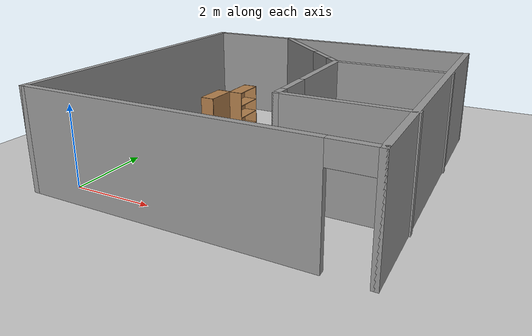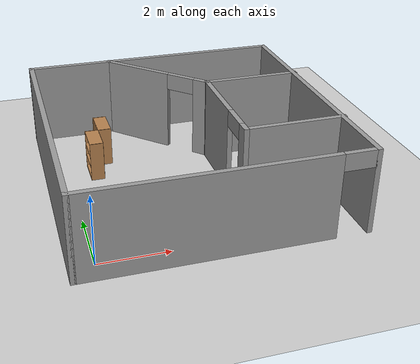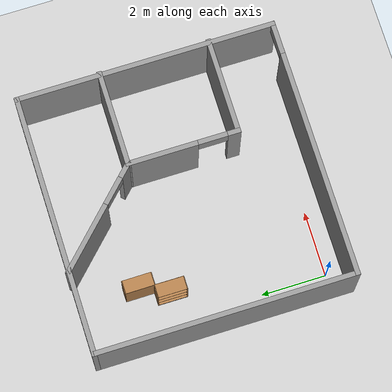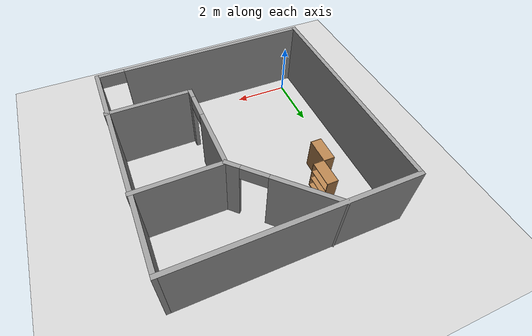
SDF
<sdf version="1.6">
 <world name="default">
  <model name="ground_plane">
   <static>1</static>
   <link name="link">
    <collision name="collision">
     <geometry><plane><normal>0 0 1</normal><size>100 100</size></plane></geometry>
     <surface><friction><ode><mu>100</mu><mu2>50</mu2></ode></friction></surface>
    </collision>
    <visual name="visual">
     <cast_shadows>0</cast_shadows>
     <geometry><plane><normal>0 0 1</normal><size>100 100</size></plane></geometry>
     <material>
      <script><uri>file://media/materials/scripts/gazebo.material</uri><name>Gazebo/Grey</name></script>
     </material>
    </visual>
   </link>
  </model>
  <model name="Untitled_0">
   <pose>3.31265 3.37544 0 0 -0 0</pose>
   <link name="Wall_10">
    <collision name="Wall_10_Collision">
     <geometry><box><size>8 0.15 2.5</size></box></geometry>
     <pose>0 0 1.25 0 -0 0</pose>
    </collision>
    <visual name="Wall_10_Visual">
     <pose>0 0 1.25 0 -0 0</pose>
     <geometry><box><size>8 0.15 2.5</size></box></geometry>
     <material>
      <script><uri>file://media/materials/scripts/gazebo.material</uri><name>Gazebo/Grey</name></script>
      <ambient>1 1 1 1</ambient>
     </material>
    </visual>
    <pose>-0.01726 3.90383 0 0 -0 3.14159</pose>
   </link>
   <link name="Wall_12">
    <collision name="Wall_12_Collision">
     <geometry><box><size>3 0.15 2.5</size></box></geometry>
     <pose>0 0 1.25 0 -0 0</pose>
    </collision>
    <visual name="Wall_12_Visual">
     <pose>0 0 1.25 0 -0 0</pose>
     <geometry><box><size>3 0.15 2.5</size></box></geometry>
     <material>
      <script><uri>file://media/materials/scripts/gazebo.material</uri><name>Gazebo/Grey</name></script>
      <ambient>1 1 1 1</ambient>
     </material>
    </visual>
    <pose>2.51726 1.36952 0 0 -0 3.14159</pose>
   </link>
   <link name="Wall_13">
    <pose>-0.180532 2.64231 0 0 -0 2.35619</pose>
    <visual name="Wall_13_Visual_0">
     <pose>-1.60522 0 1.25 0 -0 0</pose>
     <geometry><box><size>0.539569 0.15 2.5</size></box></geometry>
     <material>
      <script><uri>file://media/materials/scripts/gazebo.material</uri><name>Gazebo/Grey</name></script>
      <ambient>1 1 1 1</ambient>
     </material>
    </visual>
    <collision name="Wall_13_Collision_0">
     <geometry><box><size>0.539569 0.15 2.5</size></box></geometry>
     <pose>-1.60522 0 1.25 0 -0 0</pose>
    </collision>
    <visual name="Wall_13_Visual_1">
     <pose>0.719784 0 1.25 0 -0 0</pose>
     <geometry><box><size>2.31043 0.15 2.5</size></box></geometry>
     <material>
      <script><uri>file://media/materials/scripts/gazebo.material</uri><name>Gazebo/Grey</name></script>
      <ambient>1 1 1 1</ambient>
     </material>
    </visual>
    <collision name="Wall_13_Collision_1">
     <geometry><box><size>2.31043 0.15 2.5</size></box></geometry>
     <pose>0.719784 0 1.25 0 -0 0</pose>
    </collision>
    <visual name="Wall_13_Visual_2">
     <pose>-0.885431 0 2.25 0 -0 0</pose>
     <geometry><box><size>0.9 0.15 0.5</size></box></geometry>
     <material>
      <script><uri>file://media/materials/scripts/gazebo.material</uri><name>Gazebo/Grey</name></script>
      <ambient>1 1 1 1</ambient>
     </material>
    </visual>
    <collision name="Wall_13_Collision_2">
     <geometry><box><size>0.9 0.15 0.5</size></box></geometry>
     <pose>-0.885431 0 2.25 0 -0 0</pose>
    </collision>
   </link>
   <link name="Wall_15">
    <pose>1.09226 -0.30548 0 0 0 -1.5708</pose>
    <visual name="Wall_15_Visual_0">
     <pose>-0.650231 0 1.25 0 -0 0</pose>
     <geometry><box><size>2.19954 0.15 2.5</size></box></geometry>
     <material>
      <script><uri>file://media/materials/scripts/gazebo.material</uri><name>Gazebo/Grey</name></script>
      <ambient>1 1 1 1</ambient>
     </material>
    </visual>
    <collision name="Wall_15_Collision_0">
     <geometry><box><size>2.19954 0.15 2.5</size></box></geometry>
     <pose>-0.650231 0 1.25 0 -0 0</pose>
    </collision>
    <visual name="Wall_15_Visual_1">
     <pose>1.54977 0 1.25 0 -0 0</pose>
     <geometry><box><size>0.400462 0.15 2.5</size></box></geometry>
     <material>
      <script><uri>file://media/materials/scripts/gazebo.material</uri><name>Gazebo/Grey</name></script>
      <ambient>1 1 1 1</ambient>
     </material>
    </visual>
    <collision name="Wall_15_Collision_1">
     <geometry><box><size>0.400462 0.15 2.5</size></box></geometry>
     <pose>1.54977 0 1.25 0 -0 0</pose>
    </collision>
    <visual name="Wall_15_Visual_2">
     <pose>0.899538 0 2.25 0 -0 0</pose>
     <geometry><box><size>0.9 0.15 0.5</size></box></geometry>
     <material>
      <script><uri>file://media/materials/scripts/gazebo.material</uri><name>Gazebo/Grey</name></script>
      <ambient>1 1 1 1</ambient>
     </material>
    </visual>
    <collision name="Wall_15_Collision_2">
     <geometry><box><size>0.9 0.15 0.5</size></box></geometry>
     <pose>0.899538 0 2.25 0 -0 0</pose>
    </collision>
   </link>
   <link name="Wall_16">
    <collision name="Wall_16_Collision">
     <geometry><box><size>3 0.15 2.5</size></box></geometry>
     <pose>0 0 1.25 0 -0 0</pose>
    </collision>
    <visual name="Wall_16_Visual">
     <pose>0 0 1.25 0 -0 0</pose>
     <geometry><box><size>3 0.15 2.5</size></box></geometry>
     <material>
      <script><uri>file://media/materials/scripts/gazebo.material</uri><name>Gazebo/Grey</name></script>
      <ambient>1 1 1 1</ambient>
     </material>
    </visual>
    <pose>2.51726 -1.98048 0 0 -0 0</pose>
   </link>
   <link name="Wall_7">
    <collision name="Wall_7_Collision">
     <geometry><box><size>8 0.15 2.5</size></box></geometry>
     <pose>0 0 1.25 0 -0 0</pose>
    </collision>
    <visual name="Wall_7_Visual">
     <pose>0 0 1.25 0 -0 0</pose>
     <geometry><box><size>8 0.15 2.5</size></box></geometry>
     <material>
      <script><uri>file://media/materials/scripts/gazebo.material</uri><name>Gazebo/Grey</name></script>
      <ambient>1 1 1 1</ambient>
     </material>
    </visual>
    <pose>-3.94226 -0.02117 0 0 0 -1.5708</pose>
   </link>
   <link name="Wall_8">
    <pose>-0.01726 -3.94617 0 0 -0 0</pose>
    <visual name="Wall_8_Visual_0">
     <pose>-0.516773 0 1.25 0 -0 0</pose>
     <geometry><box><size>6.96645 0.15 2.5</size></box></geometry>
     <material>
      <script><uri>file://media/materials/scripts/gazebo.material</uri><name>Gazebo/Grey</name></script>
      <ambient>1 1 1 1</ambient>
     </material>
    </visual>
    <collision name="Wall_8_Collision_0">
     <geometry><box><size>6.96645 0.15 2.5</size></box></geometry>
     <pose>-0.516773 0 1.25 0 -0 0</pose>
    </collision>
    <visual name="Wall_8_Visual_1">
     <pose>3.93323 0 1.25 0 -0 0</pose>
     <geometry><box><size>0.133546 0.15 2.5</size></box></geometry>
     <material>
      <script><uri>file://media/materials/scripts/gazebo.material</uri><name>Gazebo/Grey</name></script>
      <ambient>1 1 1 1</ambient>
     </material>
    </visual>
    <collision name="Wall_8_Collision_1">
     <geometry><box><size>0.133546 0.15 2.5</size></box></geometry>
     <pose>3.93323 0 1.25 0 -0 0</pose>
    </collision>
    <visual name="Wall_8_Visual_2">
     <pose>3.41645 0 2.25 0 -0 0</pose>
     <geometry><box><size>0.9 0.15 0.5</size></box></geometry>
     <material>
      <script><uri>file://media/materials/scripts/gazebo.material</uri><name>Gazebo/Grey</name></script>
      <ambient>1 1 1 1</ambient>
     </material>
    </visual>
    <collision name="Wall_8_Collision_2">
     <geometry><box><size>0.9 0.15 0.5</size></box></geometry>
     <pose>3.41645 0 2.25 0 -0 0</pose>
    </collision>
   </link>
   <link name="Wall_9">
    <collision name="Wall_9_Collision">
     <geometry><box><size>8 0.15 2.5</size></box></geometry>
     <pose>0 0 1.25 0 -0 0</pose>
    </collision>
    <visual name="Wall_9_Visual">
     <pose>0 0 1.25 0 -0 0</pose>
     <geometry><box><size>8 0.15 2.5</size></box></geometry>
     <material>
      <script><uri>file://media/materials/scripts/gazebo.material</uri><name>Gazebo/Grey</name></script>
      <ambient>1 1 1 1</ambient>
     </material>
    </visual>
    <pose>3.90774 -0.02117 0 0 -0 1.5708</pose>
   </link>
   <static>1</static>
  </model>
  <model name="bookshelf_clone_1">
   <static>1</static>
   <link name="link">
    <inertial><mass>1</mass></inertial>
    <collision name="back">
     <pose>0 0.005 0.6 0 -0 0</pose>
     <geometry><box><size>0.9 0.01 1.2</size></box></geometry>
    </collision>
    <visual name="visual1">
     <pose>0 0.005 0.6 0 -0 0</pose>
     <geometry><box><size>0.9 0.01 1.2</size></box></geometry>
     <material>
      <script><uri>file://media/materials/scripts/gazebo.material</uri><name>Gazebo/Wood</name></script>
     </material>
    </visual>
    <collision name="left_side">
     <pose>0.45 -0.195 0.6 0 -0 0</pose>
     <geometry><box><size>0.02 0.4 1.2</size></box></geometry>
    </collision>
    <visual name="visual2">
     <pose>0.45 -0.195 0.6 0 -0 0</pose>
     <geometry><box><size>0.02 0.4 1.2</size></box></geometry>
     <material>
      <script><uri>file://media/materials/scripts/gazebo.material</uri><name>Gazebo/Wood</name></script>
     </material>
    </visual>
    <collision name="right_side">
     <pose>-0.45 -0.195 0.6 0 -0 0</pose>
     <geometry><box><size>0.02 0.4 1.2</size></box></geometry>
    </collision>
    <visual name="visual3">
     <pose>-0.45 -0.195 0.6 0 -0 0</pose>
     <geometry><box><size>0.02 0.4 1.2</size></box></geometry>
     <material>
      <script><uri>file://media/materials/scripts/gazebo.material</uri><name>Gazebo/Wood</name></script>
     </material>
    </visual>
    <collision name="bottom">
     <pose>0 -0.195 0.03 0 -0 0</pose>
     <geometry><box><size>0.88 0.4 0.06</size></box></geometry>
    </collision>
    <visual name="visual4">
     <pose>0 -0.195 0.03 0 -0 0</pose>
     <geometry><box><size>0.88 0.4 0.06</size></box></geometry>
     <material>
      <script><uri>file://media/materials/scripts/gazebo.material</uri><name>Gazebo/Wood</name></script>
     </material>
    </visual>
    <collision name="top">
     <pose>0 -0.195 1.19 0 -0 0</pose>
     <geometry><box><size>0.88 0.4 0.02</size></box></geometry>
    </collision>
    <visual name="visual5">
     <pose>0 -0.195 1.19 0 -0 0</pose>
     <geometry><box><size>0.88 0.4 0.02</size></box></geometry>
     <material>
      <script><uri>file://media/materials/scripts/gazebo.material</uri><name>Gazebo/Wood</name></script>
     </material>
    </visual>
    <collision name="low_shelf">
     <pose>0 -0.195 0.43 0 -0 0</pose>
     <geometry><box><size>0.88 0.4 0.02</size></box></geometry>
    </collision>
    <visual name="visual6">
     <pose>0 -0.195 0.43 0 -0 0</pose>
     <geometry><box><size>0.88 0.4 0.02</size></box></geometry>
     <material>
      <script><uri>file://media/materials/scripts/gazebo.material</uri><name>Gazebo/Wood</name></script>
     </material>
    </visual>
    <collision name="high_shelf">
     <pose>0 -0.195 0.8 0 -0 0</pose>
     <geometry><box><size>0.88 0.4 0.02</size></box></geometry>
    </collision>
    <visual name="visual7">
     <pose>0 -0.195 0.8 0 -0 0</pose>
     <geometry><box><size>0.88 0.4 0.02</size></box></geometry>
     <material>
      <script><uri>file://media/materials/scripts/gazebo.material</uri><name>Gazebo/Wood</name></script>
     </material>
    </visual>
   </link>
   <pose>1.01781 5.43958 0 0 -0 1.57557</pose>
  </model>
  <model name="bookshelf_clone_2_clone">
   <static>1</static>
   <link name="link">
    <inertial><mass>1</mass></inertial>
    <collision name="back">
     <pose>0 0.005 0.6 0 -0 0</pose>
     <geometry><box><size>0.9 0.01 1.2</size></box></geometry>
    </collision>
    <visual name="visual1">
     <pose>0 0.005 0.6 0 -0 0</pose>
     <geometry><box><size>0.9 0.01 1.2</size></box></geometry>
     <material>
      <script><uri>file://media/materials/scripts/gazebo.material</uri><name>Gazebo/Wood</name></script>
     </material>
    </visual>
    <collision name="left_side">
     <pose>0.45 -0.195 0.6 0 -0 0</pose>
     <geometry><box><size>0.02 0.4 1.2</size></box></geometry>
    </collision>
    <visual name="visual2">
     <pose>0.45 -0.195 0.6 0 -0 0</pose>
     <geometry><box><size>0.02 0.4 1.2</size></box></geometry>
     <material>
      <script><uri>file://media/materials/scripts/gazebo.material</uri><name>Gazebo/Wood</name></script>
     </material>
    </visual>
    <collision name="right_side">
     <pose>-0.45 -0.195 0.6 0 -0 0</pose>
     <geometry><box><size>0.02 0.4 1.2</size></box></geometry>
    </collision>
    <visual name="visual3">
     <pose>-0.45 -0.195 0.6 0 -0 0</pose>
     <geometry><box><size>0.02 0.4 1.2</size></box></geometry>
     <material>
      <script><uri>file://media/materials/scripts/gazebo.material</uri><name>Gazebo/Wood</name></script>
     </material>
    </visual>
    <collision name="bottom">
     <pose>0 -0.195 0.03 0 -0 0</pose>
     <geometry><box><size>0.88 0.4 0.06</size></box></geometry>
    </collision>
    <visual name="visual4">
     <pose>0 -0.195 0.03 0 -0 0</pose>
     <geometry><box><size>0.88 0.4 0.06</size></box></geometry>
     <material>
      <script><uri>file://media/materials/scripts/gazebo.material</uri><name>Gazebo/Wood</name></script>
     </material>
    </visual>
    <collision name="top">
     <pose>0 -0.195 1.19 0 -0 0</pose>
     <geometry><box><size>0.88 0.4 0.02</size></box></geometry>
    </collision>
    <visual name="visual5">
     <pose>0 -0.195 1.19 0 -0 0</pose>
     <geometry><box><size>0.88 0.4 0.02</size></box></geometry>
     <material>
      <script><uri>file://media/materials/scripts/gazebo.material</uri><name>Gazebo/Wood</name></script>
     </material>
    </visual>
    <collision name="low_shelf">
     <pose>0 -0.195 0.43 0 -0 0</pose>
     <geometry><box><size>0.88 0.4 0.02</size></box></geometry>
    </collision>
    <visual name="visual6">
     <pose>0 -0.195 0.43 0 -0 0</pose>
     <geometry><box><size>0.88 0.4 0.02</size></box></geometry>
     <material>
      <script><uri>file://media/materials/scripts/gazebo.material</uri><name>Gazebo/Wood</name></script>
     </material>
    </visual>
    <collision name="high_shelf">
     <pose>0 -0.195 0.8 0 -0 0</pose>
     <geometry><box><size>0.88 0.4 0.02</size></box></geometry>
    </collision>
    <visual name="visual7">
     <pose>0 -0.195 0.8 0 -0 0</pose>
     <geometry><box><size>0.88 0.4 0.02</size></box></geometry>
     <material>
      <script><uri>file://media/materials/scripts/gazebo.material</uri><name>Gazebo/Wood</name></script>
     </material>
    </visual>
   </link>
   <pose>1.01297 4.56499 0 0 0 -1.57535</pose>
  </model>
 </world>
</sdf>
